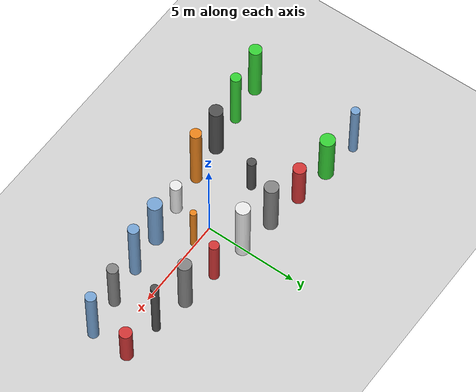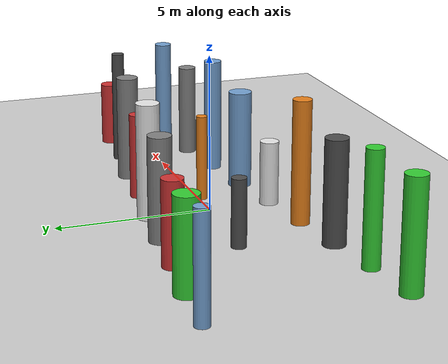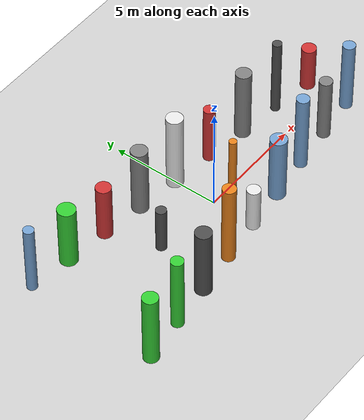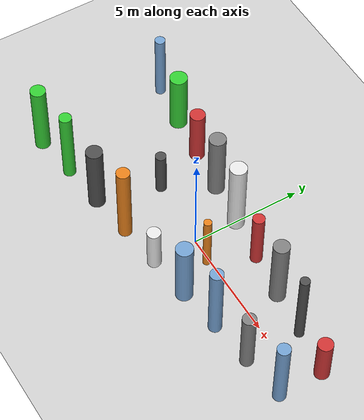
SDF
<?xml version='1.0'?>
<sdf version='1.6'>
  <world name='default'>
    <!-- Sun light -->
    <light name='sun' type='directional'>
      <cast_shadows>1</cast_shadows>
      <pose>0 0 10 0 0 0</pose>
      <diffuse>0.8 0.8 0.8 1</diffuse>
      <specular>0.2 0.2 0.2 1</specular>
      <attenuation>
        <range>1000</range>
        <constant>0.9</constant>
        <linear>0.01</linear>
        <quadratic>0.001</quadratic>
      </attenuation>
      <direction>-0.5 0.1 -0.9</direction>
    </light>

    <!-- Ground plane -->
    <model name='ground_plane'>
      <static>1</static>
      <link name='link'>
        <collision name='collision'>
          <geometry>
            <plane>
              <normal>0 0 1</normal>
              <size>100 100</size>
            </plane>
          </geometry>
          <surface>
            <contact>
              <collide_bitmask>65535</collide_bitmask>
              <ode/>
            </contact>
            <friction>
              <ode>
                <mu>100</mu>
                <mu2>50</mu2>
              </ode>
              <torsional><ode/></torsional>
            </friction>
            <bounce/>
          </surface>
          <max_contacts>10</max_contacts>
        </collision>
        <visual name='visual'>
          <cast_shadows>0</cast_shadows>
          <geometry>
            <plane>
              <normal>0 0 1</normal>
              <size>100 100</size>
            </plane>
          </geometry>
          <material>
            <script>
              <uri>file://media/materials/scripts/gazebo.material</uri>
              <n>Gazebo/Grey</n>
            </script>
          </material>
        </visual>
      </link>
    </model>

    <!-- Environment -->
    <magnetic_field>6e-06 2.3e-05 -4.2e-05</magnetic_field>
    <atmosphere type='adiabatic'/>
    <physics name='default_physics' default='0' type='ode'>
      <gravity>0 0 -9.8</gravity>
      <max_step_size>0.004</max_step_size>
      <real_time_factor>1</real_time_factor>
      <real_time_update_rate>250</real_time_update_rate>
    </physics>
    <scene>
      <ambient>0.4 0.4 0.4 1</ambient>
      <background>0.7 0.7 0.7 1</background>
      <shadows>1</shadows>
    </scene>
    <wind/>
    <spherical_coordinates>
      <surface_model>EARTH_WGS84</surface_model>
      <latitude_deg>0</latitude_deg>
      <longitude_deg>0</longitude_deg>
      <elevation>0</elevation>
      <heading_deg>0</heading_deg>
    </spherical_coordinates>

    <!-- ============ OBSTACLES (20) ============ -->
    <model name='corridor_cyl_0'>
      <static>1</static>
      <link name='link'>
        <visual name='visual'>
          <geometry>
            <cylinder>
              <radius>0.3410</radius>
              <length>3.4894</length>
            </cylinder>
          </geometry>
          <material>
            <script>
              <n>Gazebo/Green</n>
              <uri>file://media/materials/scripts/gazebo.material</uri>
            </script>
            <ambient>0.2 0.8 0.2 1</ambient>
          </material>
        </visual>
        <collision name='collision'>
          <geometry>
            <cylinder>
              <radius>0.3410</radius>
              <length>3.4894</length>
            </cylinder>
          </geometry>
          <max_contacts>10</max_contacts>
          <surface>
            <contact><ode/></contact>
            <bounce/>
            <friction>
              <ode><mu>1</mu><mu2>1</mu2></ode>
              <torsional><ode/></torsional>
            </friction>
          </surface>
        </collision>
      </link>
      <pose>-8.0000 -3.0000 1.7447 0 0 0.0000</pose>
    </model>

    <model name='corridor_cyl_1'>
      <static>1</static>
      <link name='link'>
        <visual name='visual'>
          <geometry>
            <cylinder>
              <radius>0.2772</radius>
              <length>3.6228</length>
            </cylinder>
          </geometry>
          <material>
            <script>
              <n>Gazebo/Green</n>
              <uri>file://media/materials/scripts/gazebo.material</uri>
            </script>
            <ambient>0.2 0.8 0.2 1</ambient>
          </material>
        </visual>
        <collision name='collision'>
          <geometry>
            <cylinder>
              <radius>0.2772</radius>
              <length>3.6228</length>
            </cylinder>
          </geometry>
          <max_contacts>10</max_contacts>
          <surface>
            <contact><ode/></contact>
            <bounce/>
            <friction>
              <ode><mu>1</mu><mu2>1</mu2></ode>
              <torsional><ode/></torsional>
            </friction>
          </surface>
        </collision>
      </link>
      <pose>-6.0000 -2.7500 1.8114 0 0 0.0000</pose>
    </model>

    <model name='corridor_cyl_2'>
      <static>1</static>
      <link name='link'>
        <visual name='visual'>
          <geometry>
            <cylinder>
              <radius>0.3641</radius>
              <length>3.3274</length>
            </cylinder>
          </geometry>
          <material>
            <script>
              <n>Gazebo/DarkGrey</n>
              <uri>file://media/materials/scripts/gazebo.material</uri>
            </script>
            <ambient>0.3 0.3 0.3 1</ambient>
          </material>
        </visual>
        <collision name='collision'>
          <geometry>
            <cylinder>
              <radius>0.3641</radius>
              <length>3.3274</length>
            </cylinder>
          </geometry>
          <max_contacts>10</max_contacts>
          <surface>
            <contact><ode/></contact>
            <bounce/>
            <friction>
              <ode><mu>1</mu><mu2>1</mu2></ode>
              <torsional><ode/></torsional>
            </friction>
          </surface>
        </collision>
      </link>
      <pose>-4.0000 -2.5000 1.6637 0 0 0.0000</pose>
    </model>

    <model name='corridor_cyl_3'>
      <static>1</static>
      <link name='link'>
        <visual name='visual'>
          <geometry>
            <cylinder>
              <radius>0.2991</radius>
              <length>3.9616</length>
            </cylinder>
          </geometry>
          <material>
            <script>
              <n>Gazebo/Orange</n>
              <uri>file://media/materials/scripts/gazebo.material</uri>
            </script>
            <ambient>0.9 0.5 0.1 1</ambient>
          </material>
        </visual>
        <collision name='collision'>
          <geometry>
            <cylinder>
              <radius>0.2991</radius>
              <length>3.9616</length>
            </cylinder>
          </geometry>
          <max_contacts>10</max_contacts>
          <surface>
            <contact><ode/></contact>
            <bounce/>
            <friction>
              <ode><mu>1</mu><mu2>1</mu2></ode>
              <torsional><ode/></torsional>
            </friction>
          </surface>
        </collision>
      </link>
      <pose>-2.0000 -2.2500 1.9808 0 0 0.0000</pose>
    </model>

    <model name='corridor_cyl_4'>
      <static>1</static>
      <link name='link'>
        <visual name='visual'>
          <geometry>
            <cylinder>
              <radius>0.3005</radius>
              <length>2.0740</length>
            </cylinder>
          </geometry>
          <material>
            <script>
              <n>Gazebo/White</n>
              <uri>file://media/materials/scripts/gazebo.material</uri>
            </script>
            <ambient>0.9 0.9 0.9 1</ambient>
          </material>
        </visual>
        <collision name='collision'>
          <geometry>
            <cylinder>
              <radius>0.3005</radius>
              <length>2.0740</length>
            </cylinder>
          </geometry>
          <max_contacts>10</max_contacts>
          <surface>
            <contact><ode/></contact>
            <bounce/>
            <friction>
              <ode><mu>1</mu><mu2>1</mu2></ode>
              <torsional><ode/></torsional>
            </friction>
          </surface>
        </collision>
      </link>
      <pose>0.0000 -2.0000 1.0370 0 0 0.0000</pose>
    </model>

    <model name='corridor_cyl_5'>
      <static>1</static>
      <link name='link'>
        <visual name='visual'>
          <geometry>
            <cylinder>
              <radius>0.3739</radius>
              <length>3.1804</length>
            </cylinder>
          </geometry>
          <material>
            <script>
              <n>Gazebo/Blue</n>
              <uri>file://media/materials/scripts/gazebo.material</uri>
            </script>
            <ambient>0.447 0.624 0.812 1</ambient>
          </material>
        </visual>
        <collision name='collision'>
          <geometry>
            <cylinder>
              <radius>0.3739</radius>
              <length>3.1804</length>
            </cylinder>
          </geometry>
          <max_contacts>10</max_contacts>
          <surface>
            <contact><ode/></contact>
            <bounce/>
            <friction>
              <ode><mu>1</mu><mu2>1</mu2></ode>
              <torsional><ode/></torsional>
            </friction>
          </surface>
        </collision>
      </link>
      <pose>2.0000 -1.7500 1.5902 0 0 0.0000</pose>
    </model>

    <model name='corridor_cyl_6'>
      <static>1</static>
      <link name='link'>
        <visual name='visual'>
          <geometry>
            <cylinder>
              <radius>0.2881</radius>
              <length>3.7484</length>
            </cylinder>
          </geometry>
          <material>
            <script>
              <n>Gazebo/Blue</n>
              <uri>file://media/materials/scripts/gazebo.material</uri>
            </script>
            <ambient>0.447 0.624 0.812 1</ambient>
          </material>
        </visual>
        <collision name='collision'>
          <geometry>
            <cylinder>
              <radius>0.2881</radius>
              <length>3.7484</length>
            </cylinder>
          </geometry>
          <max_contacts>10</max_contacts>
          <surface>
            <contact><ode/></contact>
            <bounce/>
            <friction>
              <ode><mu>1</mu><mu2>1</mu2></ode>
              <torsional><ode/></torsional>
            </friction>
          </surface>
        </collision>
      </link>
      <pose>4.0000 -1.5000 1.8742 0 0 0.0000</pose>
    </model>

    <model name='corridor_cyl_7'>
      <static>1</static>
      <link name='link'>
        <visual name='visual'>
          <geometry>
            <cylinder>
              <radius>0.2914</radius>
              <length>3.0519</length>
            </cylinder>
          </geometry>
          <material>
            <script>
              <n>Gazebo/Grey</n>
              <uri>file://media/materials/scripts/gazebo.material</uri>
            </script>
            <ambient>0.5 0.5 0.5 1</ambient>
          </material>
        </visual>
        <collision name='collision'>
          <geometry>
            <cylinder>
              <radius>0.2914</radius>
              <length>3.0519</length>
            </cylinder>
          </geometry>
          <max_contacts>10</max_contacts>
          <surface>
            <contact><ode/></contact>
            <bounce/>
            <friction>
              <ode><mu>1</mu><mu2>1</mu2></ode>
              <torsional><ode/></torsional>
            </friction>
          </surface>
        </collision>
      </link>
      <pose>6.0000 -1.2500 1.5260 0 0 0.0000</pose>
    </model>

    <model name='corridor_cyl_8'>
      <static>1</static>
      <link name='link'>
        <visual name='visual'>
          <geometry>
            <cylinder>
              <radius>0.2820</radius>
              <length>3.4449</length>
            </cylinder>
          </geometry>
          <material>
            <script>
              <n>Gazebo/Blue</n>
              <uri>file://media/materials/scripts/gazebo.material</uri>
            </script>
            <ambient>0.447 0.624 0.812 1</ambient>
          </material>
        </visual>
        <collision name='collision'>
          <geometry>
            <cylinder>
              <radius>0.2820</radius>
              <length>3.4449</length>
            </cylinder>
          </geometry>
          <max_contacts>10</max_contacts>
          <surface>
            <contact><ode/></contact>
            <bounce/>
            <friction>
              <ode><mu>1</mu><mu2>1</mu2></ode>
              <torsional><ode/></torsional>
            </friction>
          </surface>
        </collision>
      </link>
      <pose>8.0000 -1.0000 1.7224 0 0 0.0000</pose>
    </model>

    <model name='corridor_cyl_9'>
      <static>1</static>
      <link name='link'>
        <visual name='visual'>
          <geometry>
            <cylinder>
              <radius>0.2309</radius>
              <length>3.3096</length>
            </cylinder>
          </geometry>
          <material>
            <script>
              <n>Gazebo/Blue</n>
              <uri>file://media/materials/scripts/gazebo.material</uri>
            </script>
            <ambient>0.447 0.624 0.812 1</ambient>
          </material>
        </visual>
        <collision name='collision'>
          <geometry>
            <cylinder>
              <radius>0.2309</radius>
              <length>3.3096</length>
            </cylinder>
          </geometry>
          <max_contacts>10</max_contacts>
          <surface>
            <contact><ode/></contact>
            <bounce/>
            <friction>
              <ode><mu>1</mu><mu2>1</mu2></ode>
              <torsional><ode/></torsional>
            </friction>
          </surface>
        </collision>
      </link>
      <pose>-8.0000 3.0000 1.6548 0 0 0.0000</pose>
    </model>

    <model name='corridor_cyl_10'>
      <static>1</static>
      <link name='link'>
        <visual name='visual'>
          <geometry>
            <cylinder>
              <radius>0.3938</radius>
              <length>2.9390</length>
            </cylinder>
          </geometry>
          <material>
            <script>
              <n>Gazebo/Green</n>
              <uri>file://media/materials/scripts/gazebo.material</uri>
            </script>
            <ambient>0.2 0.8 0.2 1</ambient>
          </material>
        </visual>
        <collision name='collision'>
          <geometry>
            <cylinder>
              <radius>0.3938</radius>
              <length>2.9390</length>
            </cylinder>
          </geometry>
          <max_contacts>10</max_contacts>
          <surface>
            <contact><ode/></contact>
            <bounce/>
            <friction>
              <ode><mu>1</mu><mu2>1</mu2></ode>
              <torsional><ode/></torsional>
            </friction>
          </surface>
        </collision>
      </link>
      <pose>-6.0000 2.7500 1.4695 0 0 0.0000</pose>
    </model>

    <model name='corridor_cyl_11'>
      <static>1</static>
      <link name='link'>
        <visual name='visual'>
          <geometry>
            <cylinder>
              <radius>0.3385</radius>
              <length>2.6771</length>
            </cylinder>
          </geometry>
          <material>
            <script>
              <n>Gazebo/Red</n>
              <uri>file://media/materials/scripts/gazebo.material</uri>
            </script>
            <ambient>0.8 0.2 0.2 1</ambient>
          </material>
        </visual>
        <collision name='collision'>
          <geometry>
            <cylinder>
              <radius>0.3385</radius>
              <length>2.6771</length>
            </cylinder>
          </geometry>
          <max_contacts>10</max_contacts>
          <surface>
            <contact><ode/></contact>
            <bounce/>
            <friction>
              <ode><mu>1</mu><mu2>1</mu2></ode>
              <torsional><ode/></torsional>
            </friction>
          </surface>
        </collision>
      </link>
      <pose>-4.0000 2.5000 1.3386 0 0 0.0000</pose>
    </model>

    <model name='corridor_cyl_12'>
      <static>1</static>
      <link name='link'>
        <visual name='visual'>
          <geometry>
            <cylinder>
              <radius>0.3704</radius>
              <length>3.2997</length>
            </cylinder>
          </geometry>
          <material>
            <script>
              <n>Gazebo/Grey</n>
              <uri>file://media/materials/scripts/gazebo.material</uri>
            </script>
            <ambient>0.5 0.5 0.5 1</ambient>
          </material>
        </visual>
        <collision name='collision'>
          <geometry>
            <cylinder>
              <radius>0.3704</radius>
              <length>3.2997</length>
            </cylinder>
          </geometry>
          <max_contacts>10</max_contacts>
          <surface>
            <contact><ode/></contact>
            <bounce/>
            <friction>
              <ode><mu>1</mu><mu2>1</mu2></ode>
              <torsional><ode/></torsional>
            </friction>
          </surface>
        </collision>
      </link>
      <pose>-2.0000 2.2500 1.6498 0 0 0.0000</pose>
    </model>

    <model name='corridor_cyl_13'>
      <static>1</static>
      <link name='link'>
        <visual name='visual'>
          <geometry>
            <cylinder>
              <radius>0.3719</radius>
              <length>3.7047</length>
            </cylinder>
          </geometry>
          <material>
            <script>
              <n>Gazebo/White</n>
              <uri>file://media/materials/scripts/gazebo.material</uri>
            </script>
            <ambient>0.9 0.9 0.9 1</ambient>
          </material>
        </visual>
        <collision name='collision'>
          <geometry>
            <cylinder>
              <radius>0.3719</radius>
              <length>3.7047</length>
            </cylinder>
          </geometry>
          <max_contacts>10</max_contacts>
          <surface>
            <contact><ode/></contact>
            <bounce/>
            <friction>
              <ode><mu>1</mu><mu2>1</mu2></ode>
              <torsional><ode/></torsional>
            </friction>
          </surface>
        </collision>
      </link>
      <pose>0.0000 2.0000 1.8523 0 0 0.0000</pose>
    </model>

    <model name='corridor_cyl_14'>
      <static>1</static>
      <link name='link'>
        <visual name='visual'>
          <geometry>
            <cylinder>
              <radius>0.2633</radius>
              <length>2.7600</length>
            </cylinder>
          </geometry>
          <material>
            <script>
              <n>Gazebo/Red</n>
              <uri>file://media/materials/scripts/gazebo.material</uri>
            </script>
            <ambient>0.8 0.2 0.2 1</ambient>
          </material>
        </visual>
        <collision name='collision'>
          <geometry>
            <cylinder>
              <radius>0.2633</radius>
              <length>2.7600</length>
            </cylinder>
          </geometry>
          <max_contacts>10</max_contacts>
          <surface>
            <contact><ode/></contact>
            <bounce/>
            <friction>
              <ode><mu>1</mu><mu2>1</mu2></ode>
              <torsional><ode/></torsional>
            </friction>
          </surface>
        </collision>
      </link>
      <pose>2.0000 1.7500 1.3800 0 0 0.0000</pose>
    </model>

    <model name='corridor_cyl_15'>
      <static>1</static>
      <link name='link'>
        <visual name='visual'>
          <geometry>
            <cylinder>
              <radius>0.3519</radius>
              <length>3.4374</length>
            </cylinder>
          </geometry>
          <material>
            <script>
              <n>Gazebo/Grey</n>
              <uri>file://media/materials/scripts/gazebo.material</uri>
            </script>
            <ambient>0.5 0.5 0.5 1</ambient>
          </material>
        </visual>
        <collision name='collision'>
          <geometry>
            <cylinder>
              <radius>0.3519</radius>
              <length>3.4374</length>
            </cylinder>
          </geometry>
          <max_contacts>10</max_contacts>
          <surface>
            <contact><ode/></contact>
            <bounce/>
            <friction>
              <ode><mu>1</mu><mu2>1</mu2></ode>
              <torsional><ode/></torsional>
            </friction>
          </surface>
        </collision>
      </link>
      <pose>4.0000 1.5000 1.7187 0 0 0.0000</pose>
    </model>

    <model name='corridor_cyl_16'>
      <static>1</static>
      <link name='link'>
        <visual name='visual'>
          <geometry>
            <cylinder>
              <radius>0.2072</radius>
              <length>3.7448</length>
            </cylinder>
          </geometry>
          <material>
            <script>
              <n>Gazebo/DarkGrey</n>
              <uri>file://media/materials/scripts/gazebo.material</uri>
            </script>
            <ambient>0.3 0.3 0.3 1</ambient>
          </material>
        </visual>
        <collision name='collision'>
          <geometry>
            <cylinder>
              <radius>0.2072</radius>
              <length>3.7448</length>
            </cylinder>
          </geometry>
          <max_contacts>10</max_contacts>
          <surface>
            <contact><ode/></contact>
            <bounce/>
            <friction>
              <ode><mu>1</mu><mu2>1</mu2></ode>
              <torsional><ode/></torsional>
            </friction>
          </surface>
        </collision>
      </link>
      <pose>6.0000 1.2500 1.8724 0 0 0.0000</pose>
    </model>

    <model name='corridor_cyl_17'>
      <static>1</static>
      <link name='link'>
        <visual name='visual'>
          <geometry>
            <cylinder>
              <radius>0.3262</radius>
              <length>2.1368</length>
            </cylinder>
          </geometry>
          <material>
            <script>
              <n>Gazebo/Red</n>
              <uri>file://media/materials/scripts/gazebo.material</uri>
            </script>
            <ambient>0.8 0.2 0.2 1</ambient>
          </material>
        </visual>
        <collision name='collision'>
          <geometry>
            <cylinder>
              <radius>0.3262</radius>
              <length>2.1368</length>
            </cylinder>
          </geometry>
          <max_contacts>10</max_contacts>
          <surface>
            <contact><ode/></contact>
            <bounce/>
            <friction>
              <ode><mu>1</mu><mu2>1</mu2></ode>
              <torsional><ode/></torsional>
            </friction>
          </surface>
        </collision>
      </link>
      <pose>8.0000 1.0000 1.0684 0 0 0.0000</pose>
    </model>

    <model name='corridor_inner_18'>
      <static>1</static>
      <link name='link'>
        <visual name='visual'>
          <geometry>
            <cylinder>
              <radius>0.2373</radius>
              <length>2.1655</length>
            </cylinder>
          </geometry>
          <material>
            <script>
              <n>Gazebo/DarkGrey</n>
              <uri>file://media/materials/scripts/gazebo.material</uri>
            </script>
            <ambient>0.3 0.3 0.3 1</ambient>
          </material>
        </visual>
        <collision name='collision'>
          <geometry>
            <cylinder>
              <radius>0.2373</radius>
              <length>2.1655</length>
            </cylinder>
          </geometry>
          <max_contacts>10</max_contacts>
          <surface>
            <contact><ode/></contact>
            <bounce/>
            <friction>
              <ode><mu>1</mu><mu2>1</mu2></ode>
              <torsional><ode/></torsional>
            </friction>
          </surface>
        </collision>
      </link>
      <pose>-3.2125 0.2140 1.0828 0 0 0.0000</pose>
    </model>

    <model name='corridor_inner_19'>
      <static>1</static>
      <link name='link'>
        <visual name='visual'>
          <geometry>
            <cylinder>
              <radius>0.1750</radius>
              <length>2.7680</length>
            </cylinder>
          </geometry>
          <material>
            <script>
              <n>Gazebo/Orange</n>
              <uri>file://media/materials/scripts/gazebo.material</uri>
            </script>
            <ambient>0.9 0.5 0.1 1</ambient>
          </material>
        </visual>
        <collision name='collision'>
          <geometry>
            <cylinder>
              <radius>0.1750</radius>
              <length>2.7680</length>
            </cylinder>
          </geometry>
          <max_contacts>10</max_contacts>
          <surface>
            <contact><ode/></contact>
            <bounce/>
            <friction>
              <ode><mu>1</mu><mu2>1</mu2></ode>
              <torsional><ode/></torsional>
            </friction>
          </surface>
        </collision>
      </link>
      <pose>1.1115 -0.1211 1.3840 0 0 0.0000</pose>
    </model>

    <!-- GUI camera -->
    <gui fullscreen='0'>
      <camera name='user_camera'>
        <pose>-15 0 18 0 0.85 0.15</pose>
        <view_controller>orbit</view_controller>
        <projection_type>perspective</projection_type>
      </camera>
    </gui>
  </world>
</sdf>
